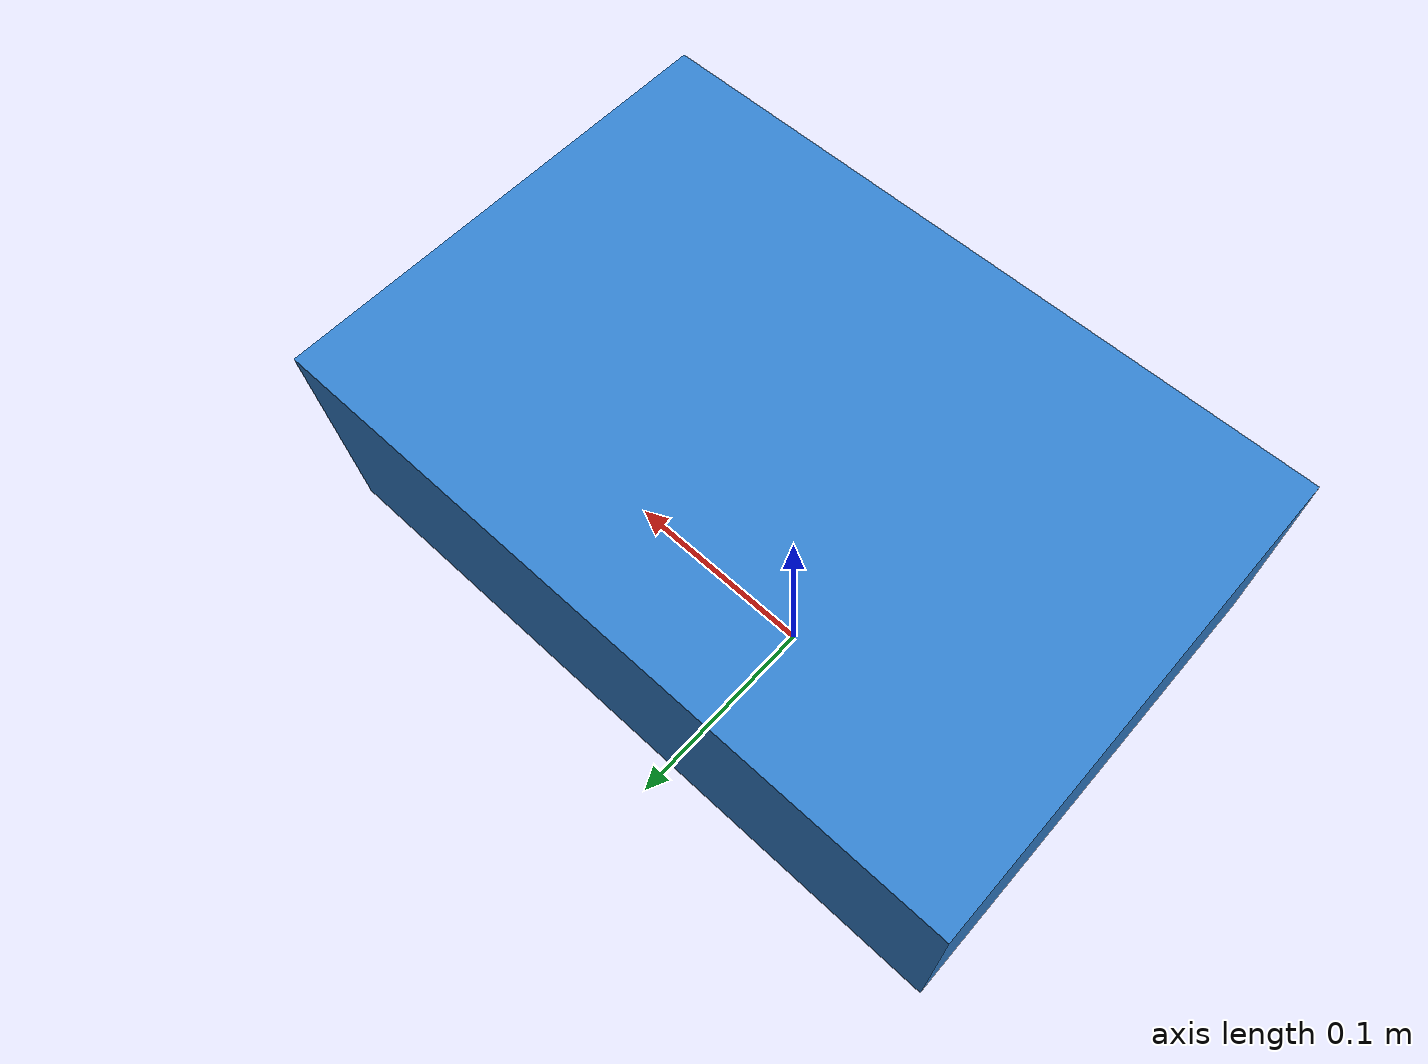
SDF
<?xml version="1.0"?>
<sdf version="1.9">
<world name="noise_test">

  <physics type="dart">
    <max_step_size>0.001</max_step_size>
    <real_time_factor>1.0</real_time_factor>
  </physics>

  <gravity>0 0 -9.81</gravity>

  <model name="static_robot">
    <static>true</static>
    <pose>0 0 0.15 0 0 0</pose>
    <link name="body">
      <inertial><mass>2.0</mass>
        <inertia><ixx>0.0083</ixx><iyy>0.0167</iyy><izz>0.0217</izz>
                 <ixy>0</ixy><ixz>0</ixz><iyz>0</iyz></inertia>
      </inertial>
      <visual name="v">
        <geometry><box><size>0.3 0.2 0.1</size></box></geometry>
        <material><ambient>0.2 0.5 0.8 1</ambient></material>
      </visual>

      <sensor name="imu_sensor" type="imu">
        <always_on>true</always_on>
        <update_rate>100</update_rate>
        <imu>
          <angular_velocity>
            <x><noise type="gaussian"><mean>0.0</mean><stddev>0.1</stddev>
               <bias_mean>0.0</bias_mean><bias_stddev>0.0001</bias_stddev></noise></x>
            <y><noise type="gaussian"><mean>0.0</mean><stddev>0.1</stddev>
               <bias_mean>0.0</bias_mean><bias_stddev>0.0001</bias_stddev></noise></y>
            <z><noise type="gaussian"><mean>0.0</mean><stddev>0.1</stddev>
               <bias_mean>0.0</bias_mean><bias_stddev>0.0001</bias_stddev></noise></z>
          </angular_velocity>
          <linear_acceleration>
            <x><noise type="gaussian"><mean>0.0</mean><stddev>0.1</stddev></noise></x>
            <y><noise type="gaussian"><mean>0.0</mean><stddev>0.1</stddev></noise></y>
            <z><noise type="gaussian"><mean>0.0</mean><stddev>0.1</stddev></noise></z>
          </linear_acceleration>
        </imu>
        <topic>/imu/data</topic>
      </sensor>
    </link>
  </model>

  <light name="sun" type="directional">
    <pose>0 0 10 0 0 0</pose>
    <direction>-0.5 0.1 -0.9</direction>
    <diffuse>1 1 1 1</diffuse>
    <cast_shadows>false</cast_shadows>
  </light>

</world>
</sdf>
